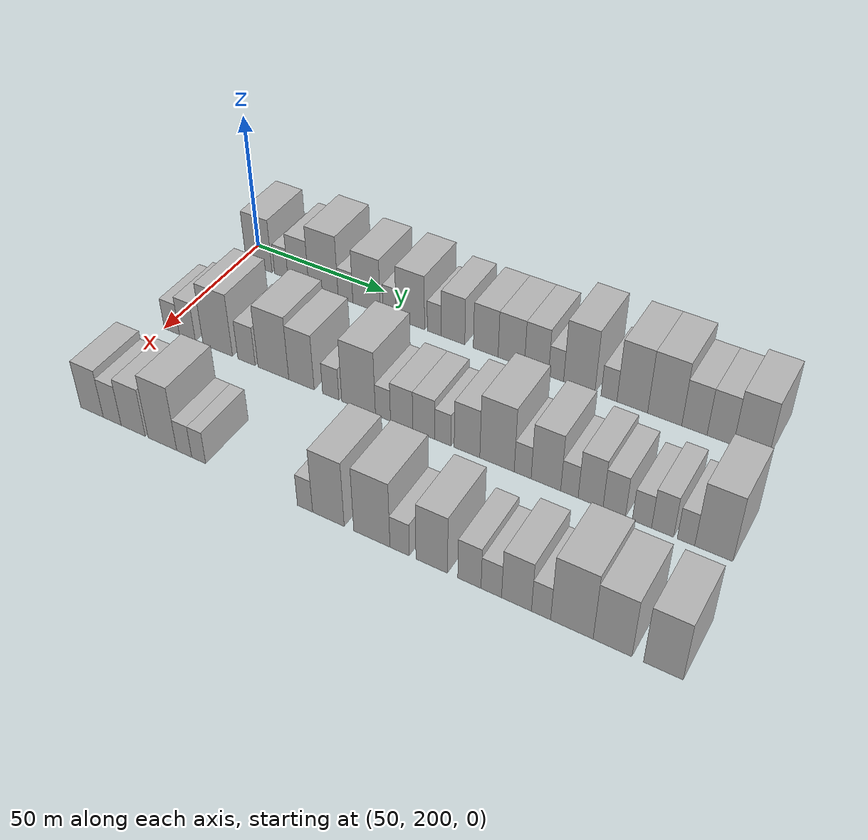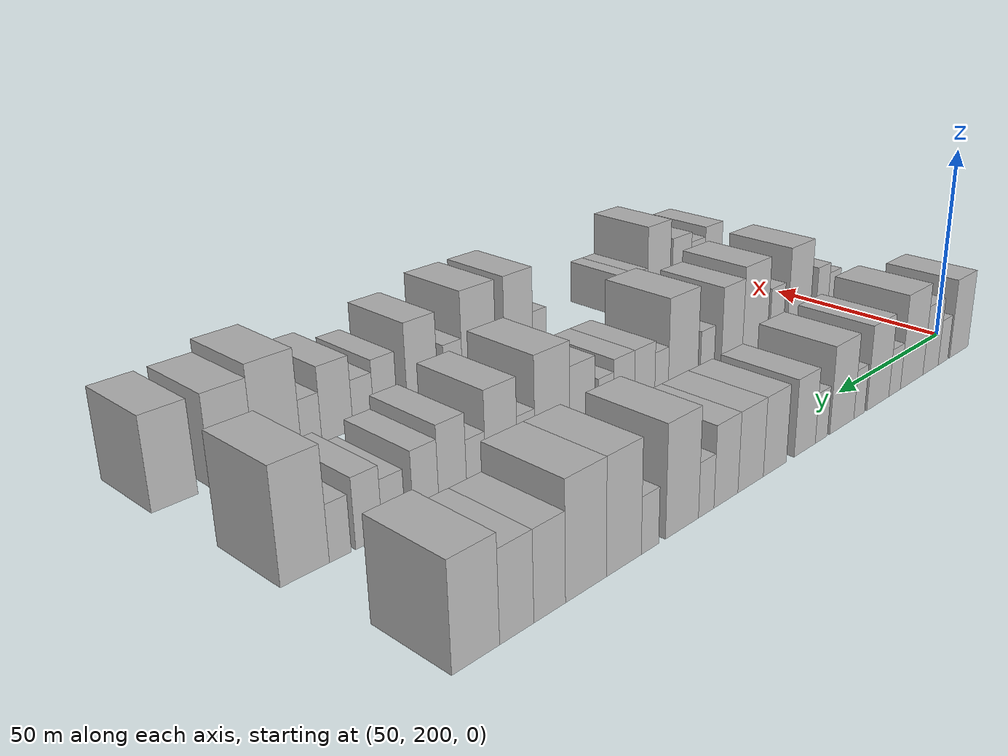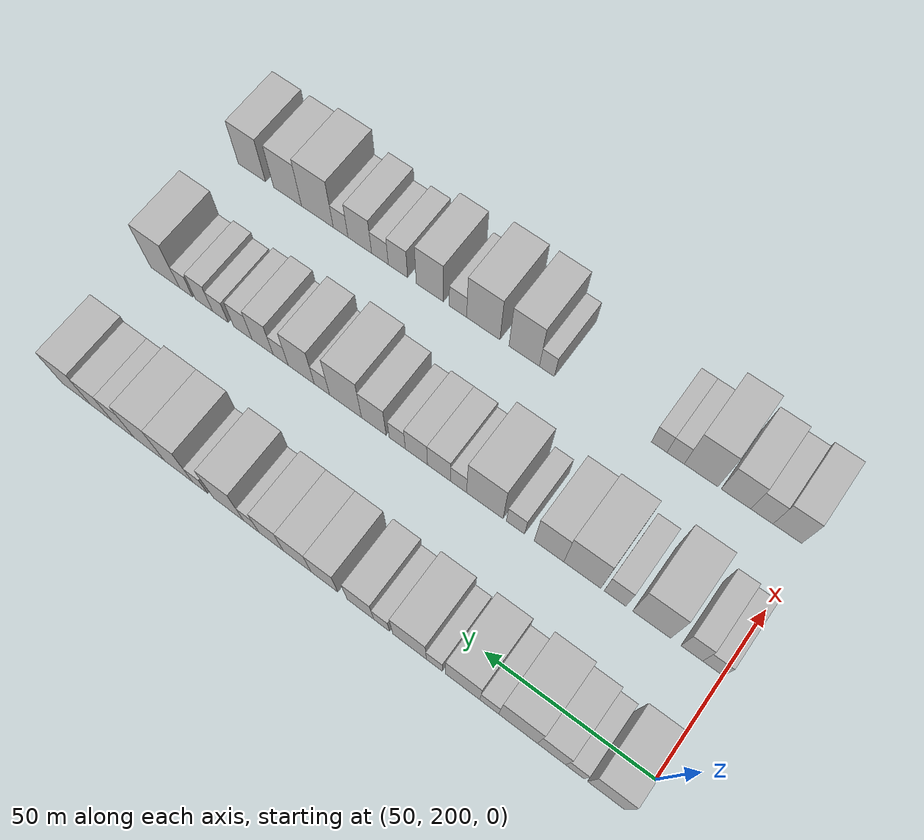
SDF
<sdf version="1.6">
 <world name="default">
  <model name="building_62">
   <static>1</static>
   <pose>50.0000 207.5864 0 0.000000 0.000000 0.000000</pose>
   <link name="link">
    <pose>0 0 10.50 0 0 0</pose>
    <collision name="collision"><geometry><box><size>20.0000 10.4510 21.0000</size></box></geometry></collision>
    <visual name="visual">
     <cast_shadows>0</cast_shadows>
     <geometry><box><size>20.0000 10.4510 21.0000</size></box></geometry>
     <material>
      <script>
       <uri>model://HANNAS_wall/materials/scripts</uri>
       <uri>model://HANNAS_wall/materials/textures</uri>
       <name>vrc/HANNAS_wall</name>
      </script>
     </material>
    </visual>
   </link>
  </model>
  <model name="building_63">
   <static>1</static>
   <pose>50.0000 216.4677 0 0.000000 0.000000 0.000000</pose>
   <link name="link">
    <pose>0 0 6.00 0 0 0</pose>
    <collision name="collision"><geometry><box><size>20.0000 5.3117 12.0000</size></box></geometry></collision>
    <visual name="visual">
     <cast_shadows>0</cast_shadows>
     <geometry><box><size>20.0000 5.3117 12.0000</size></box></geometry>
     <material>
      <script>
       <uri>model://HANNAS_wall/materials/scripts</uri>
       <uri>model://HANNAS_wall/materials/textures</uri>
       <name>vrc/HANNAS_wall</name>
      </script>
     </material>
    </visual>
   </link>
  </model>
  <model name="building_64">
   <static>1</static>
   <pose>50.0000 223.2005 0 0.000000 0.000000 0.000000</pose>
   <link name="link">
    <pose>0 0 9.00 0 0 0</pose>
    <collision name="collision"><geometry><box><size>20.0000 8.1540 18.0000</size></box></geometry></collision>
    <visual name="visual">
     <cast_shadows>0</cast_shadows>
     <geometry><box><size>20.0000 8.1540 18.0000</size></box></geometry>
     <material>
      <script>
       <uri>model://HANNAS_wall/materials/scripts</uri>
       <uri>model://HANNAS_wall/materials/textures</uri>
       <name>vrc/HANNAS_wall</name>
      </script>
     </material>
    </visual>
   </link>
  </model>
  <model name="building_65">
   <static>1</static>
   <pose>50.0000 232.9876 0 0.000000 0.000000 0.000000</pose>
   <link name="link">
    <pose>0 0 12.00 0 0 0</pose>
    <collision name="collision"><geometry><box><size>20.0000 11.4201 24.0000</size></box></geometry></collision>
    <visual name="visual">
     <cast_shadows>0</cast_shadows>
     <geometry><box><size>20.0000 11.4201 24.0000</size></box></geometry>
     <material>
      <script>
       <uri>model://HANNAS_wall/materials/scripts</uri>
       <uri>model://HANNAS_wall/materials/textures</uri>
       <name>vrc/HANNAS_wall</name>
      </script>
     </material>
    </visual>
   </link>
  </model>
  <model name="building_66">
   <static>1</static>
   <pose>50.0000 241.5061 0 0.000000 0.000000 0.000000</pose>
   <link name="link">
    <pose>0 0 6.00 0 0 0</pose>
    <collision name="collision"><geometry><box><size>20.0000 5.6169 12.0000</size></box></geometry></collision>
    <visual name="visual">
     <cast_shadows>0</cast_shadows>
     <geometry><box><size>20.0000 5.6169 12.0000</size></box></geometry>
     <material>
      <script>
       <uri>model://HANNAS_wall/materials/scripts</uri>
       <uri>model://HANNAS_wall/materials/textures</uri>
       <name>vrc/HANNAS_wall</name>
      </script>
     </material>
    </visual>
   </link>
  </model>
  <model name="building_67">
   <static>1</static>
   <pose>50.0000 249.4682 0 0.000000 0.000000 0.000000</pose>
   <link name="link">
    <pose>0 0 10.50 0 0 0</pose>
    <collision name="collision"><geometry><box><size>20.0000 10.3072 21.0000</size></box></geometry></collision>
    <visual name="visual">
     <cast_shadows>0</cast_shadows>
     <geometry><box><size>20.0000 10.3072 21.0000</size></box></geometry>
     <material>
      <script>
       <uri>model://HANNAS_wall/materials/scripts</uri>
       <uri>model://HANNAS_wall/materials/textures</uri>
       <name>vrc/HANNAS_wall</name>
      </script>
     </material>
    </visual>
   </link>
  </model>
  <model name="building_68">
   <static>1</static>
   <pose>50.0000 258.0373 0 0.000000 0.000000 0.000000</pose>
   <link name="link">
    <pose>0 0 6.00 0 0 0</pose>
    <collision name="collision"><geometry><box><size>20.0000 4.8310 12.0000</size></box></geometry></collision>
    <visual name="visual">
     <cast_shadows>0</cast_shadows>
     <geometry><box><size>20.0000 4.8310 12.0000</size></box></geometry>
     <material>
      <script>
       <uri>model://HANNAS_wall/materials/scripts</uri>
       <uri>model://HANNAS_wall/materials/textures</uri>
       <name>vrc/HANNAS_wall</name>
      </script>
     </material>
    </visual>
   </link>
  </model>
  <model name="building_69">
   <static>1</static>
   <pose>50.0000 265.6337 0 0.000000 0.000000 0.000000</pose>
   <link name="link">
    <pose>0 0 10.50 0 0 0</pose>
    <collision name="collision"><geometry><box><size>20.0000 10.3618 21.0000</size></box></geometry></collision>
    <visual name="visual">
     <cast_shadows>0</cast_shadows>
     <geometry><box><size>20.0000 10.3618 21.0000</size></box></geometry>
     <material>
      <script>
       <uri>model://HANNAS_wall/materials/scripts</uri>
       <uri>model://HANNAS_wall/materials/textures</uri>
       <name>vrc/HANNAS_wall</name>
      </script>
     </material>
    </visual>
   </link>
  </model>
  <model name="building_70">
   <static>1</static>
   <pose>50.0000 274.2960 0 0.000000 0.000000 0.000000</pose>
   <link name="link">
    <pose>0 0 6.00 0 0 0</pose>
    <collision name="collision"><geometry><box><size>20.0000 4.9629 12.0000</size></box></geometry></collision>
    <visual name="visual">
     <cast_shadows>0</cast_shadows>
     <geometry><box><size>20.0000 4.9629 12.0000</size></box></geometry>
     <material>
      <script>
       <uri>model://HANNAS_wall/materials/scripts</uri>
       <uri>model://HANNAS_wall/materials/textures</uri>
       <name>vrc/HANNAS_wall</name>
      </script>
     </material>
    </visual>
   </link>
  </model>
  <model name="building_71">
   <static>1</static>
   <pose>50.0000 280.9626 0 0.000000 0.000000 0.000000</pose>
   <link name="link">
    <pose>0 0 9.00 0 0 0</pose>
    <collision name="collision"><geometry><box><size>20.0000 8.3702 18.0000</size></box></geometry></collision>
    <visual name="visual">
     <cast_shadows>0</cast_shadows>
     <geometry><box><size>20.0000 8.3702 18.0000</size></box></geometry>
     <material>
      <script>
       <uri>model://HANNAS_wall/materials/scripts</uri>
       <uri>model://HANNAS_wall/materials/textures</uri>
       <name>vrc/HANNAS_wall</name>
      </script>
     </material>
    </visual>
   </link>
  </model>
  <model name="building_72">
   <static>1</static>
   <pose>50.0000 292.4372 0 0.000000 0.000000 0.000000</pose>
   <link name="link">
    <pose>0 0 9.00 0 0 0</pose>
    <collision name="collision"><geometry><box><size>20.0000 8.5790 18.0000</size></box></geometry></collision>
    <visual name="visual">
     <cast_shadows>0</cast_shadows>
     <geometry><box><size>20.0000 8.5790 18.0000</size></box></geometry>
     <material>
      <script>
       <uri>model://HANNAS_wall/materials/scripts</uri>
       <uri>model://HANNAS_wall/materials/textures</uri>
       <name>vrc/HANNAS_wall</name>
      </script>
     </material>
    </visual>
   </link>
  </model>
  <model name="building_73">
   <static>1</static>
   <pose>50.0000 301.2231 0 0.000000 0.000000 0.000000</pose>
   <link name="link">
    <pose>0 0 9.00 0 0 0</pose>
    <collision name="collision"><geometry><box><size>20.0000 8.9927 18.0000</size></box></geometry></collision>
    <visual name="visual">
     <cast_shadows>0</cast_shadows>
     <geometry><box><size>20.0000 8.9927 18.0000</size></box></geometry>
     <material>
      <script>
       <uri>model://HANNAS_wall/materials/scripts</uri>
       <uri>model://HANNAS_wall/materials/textures</uri>
       <name>vrc/HANNAS_wall</name>
      </script>
     </material>
    </visual>
   </link>
  </model>
  <model name="building_74">
   <static>1</static>
   <pose>50.0000 309.7520 0 0.000000 0.000000 0.000000</pose>
   <link name="link">
    <pose>0 0 9.00 0 0 0</pose>
    <collision name="collision"><geometry><box><size>20.0000 8.0651 18.0000</size></box></geometry></collision>
    <visual name="visual">
     <cast_shadows>0</cast_shadows>
     <geometry><box><size>20.0000 8.0651 18.0000</size></box></geometry>
     <material>
      <script>
       <uri>model://HANNAS_wall/materials/scripts</uri>
       <uri>model://HANNAS_wall/materials/textures</uri>
       <name>vrc/HANNAS_wall</name>
      </script>
     </material>
    </visual>
   </link>
  </model>
  <model name="building_75">
   <static>1</static>
   <pose>50.0000 316.2865 0 0.000000 0.000000 0.000000</pose>
   <link name="link">
    <pose>0 0 6.00 0 0 0</pose>
    <collision name="collision"><geometry><box><size>20.0000 5.0039 12.0000</size></box></geometry></collision>
    <visual name="visual">
     <cast_shadows>0</cast_shadows>
     <geometry><box><size>20.0000 5.0039 12.0000</size></box></geometry>
     <material>
      <script>
       <uri>model://HANNAS_wall/materials/scripts</uri>
       <uri>model://HANNAS_wall/materials/textures</uri>
       <name>vrc/HANNAS_wall</name>
      </script>
     </material>
    </visual>
   </link>
  </model>
  <model name="building_76">
   <static>1</static>
   <pose>50.0000 323.8845 0 0.000000 0.000000 0.000000</pose>
   <link name="link">
    <pose>0 0 12.00 0 0 0</pose>
    <collision name="collision"><geometry><box><size>20.0000 10.1921 24.0000</size></box></geometry></collision>
    <visual name="visual">
     <cast_shadows>0</cast_shadows>
     <geometry><box><size>20.0000 10.1921 24.0000</size></box></geometry>
     <material>
      <script>
       <uri>model://HANNAS_wall/materials/scripts</uri>
       <uri>model://HANNAS_wall/materials/textures</uri>
       <name>vrc/HANNAS_wall</name>
      </script>
     </material>
    </visual>
   </link>
  </model>
  <model name="building_77">
   <static>1</static>
   <pose>50.0000 333.5135 0 0.000000 0.000000 0.000000</pose>
   <link name="link">
    <pose>0 0 6.00 0 0 0</pose>
    <collision name="collision"><geometry><box><size>20.0000 5.0658 12.0000</size></box></geometry></collision>
    <visual name="visual">
     <cast_shadows>0</cast_shadows>
     <geometry><box><size>20.0000 5.0658 12.0000</size></box></geometry>
     <material>
      <script>
       <uri>model://HANNAS_wall/materials/scripts</uri>
       <uri>model://HANNAS_wall/materials/textures</uri>
       <name>vrc/HANNAS_wall</name>
      </script>
     </material>
    </visual>
   </link>
  </model>
  <model name="building_78">
   <static>1</static>
   <pose>50.0000 340.8929 0 0.000000 0.000000 0.000000</pose>
   <link name="link">
    <pose>0 0 12.00 0 0 0</pose>
    <collision name="collision"><geometry><box><size>20.0000 9.6931 24.0000</size></box></geometry></collision>
    <visual name="visual">
     <cast_shadows>0</cast_shadows>
     <geometry><box><size>20.0000 9.6931 24.0000</size></box></geometry>
     <material>
      <script>
       <uri>model://HANNAS_wall/materials/scripts</uri>
       <uri>model://HANNAS_wall/materials/textures</uri>
       <name>vrc/HANNAS_wall</name>
      </script>
     </material>
    </visual>
   </link>
  </model>
  <model name="building_79">
   <static>1</static>
   <pose>50.0000 351.0187 0 0.000000 0.000000 0.000000</pose>
   <link name="link">
    <pose>0 0 12.00 0 0 0</pose>
    <collision name="collision"><geometry><box><size>20.0000 10.5584 24.0000</size></box></geometry></collision>
    <visual name="visual">
     <cast_shadows>0</cast_shadows>
     <geometry><box><size>20.0000 10.5584 24.0000</size></box></geometry>
     <material>
      <script>
       <uri>model://HANNAS_wall/materials/scripts</uri>
       <uri>model://HANNAS_wall/materials/textures</uri>
       <name>vrc/HANNAS_wall</name>
      </script>
     </material>
    </visual>
   </link>
  </model>
  <model name="building_80">
   <static>1</static>
   <pose>50.0000 360.1405 0 0.000000 0.000000 0.000000</pose>
   <link name="link">
    <pose>0 0 9.00 0 0 0</pose>
    <collision name="collision"><geometry><box><size>20.0000 7.6852 18.0000</size></box></geometry></collision>
    <visual name="visual">
     <cast_shadows>0</cast_shadows>
     <geometry><box><size>20.0000 7.6852 18.0000</size></box></geometry>
     <material>
      <script>
       <uri>model://HANNAS_wall/materials/scripts</uri>
       <uri>model://HANNAS_wall/materials/textures</uri>
       <name>vrc/HANNAS_wall</name>
      </script>
     </material>
    </visual>
   </link>
  </model>
  <model name="building_81">
   <static>1</static>
   <pose>50.0000 367.9223 0 0.000000 0.000000 0.000000</pose>
   <link name="link">
    <pose>0 0 9.00 0 0 0</pose>
    <collision name="collision"><geometry><box><size>20.0000 7.8785 18.0000</size></box></geometry></collision>
    <visual name="visual">
     <cast_shadows>0</cast_shadows>
     <geometry><box><size>20.0000 7.8785 18.0000</size></box></geometry>
     <material>
      <script>
       <uri>model://HANNAS_wall/materials/scripts</uri>
       <uri>model://HANNAS_wall/materials/textures</uri>
       <name>vrc/HANNAS_wall</name>
      </script>
     </material>
    </visual>
   </link>
  </model>
  <model name="building_82">
   <static>1</static>
   <pose>50.0000 377.0366 0 0.000000 0.000000 0.000000</pose>
   <link name="link">
    <pose>0 0 10.50 0 0 0</pose>
    <collision name="collision"><geometry><box><size>20.0000 10.3501 21.0000</size></box></geometry></collision>
    <visual name="visual">
     <cast_shadows>0</cast_shadows>
     <geometry><box><size>20.0000 10.3501 21.0000</size></box></geometry>
     <material>
      <script>
       <uri>model://HANNAS_wall/materials/scripts</uri>
       <uri>model://HANNAS_wall/materials/textures</uri>
       <name>vrc/HANNAS_wall</name>
      </script>
     </material>
    </visual>
   </link>
  </model>
  <model name="building_144">
   <static>1</static>
   <pose>90.0000 202.9818 0 0.000000 0.000000 0.000000</pose>
   <link name="link">
    <pose>0 0 6.00 0 0 0</pose>
    <collision name="collision"><geometry><box><size>20.0000 5.9106 12.0000</size></box></geometry></collision>
    <visual name="visual">
     <cast_shadows>0</cast_shadows>
     <geometry><box><size>20.0000 5.9106 12.0000</size></box></geometry>
     <material>
      <script>
       <uri>model://HANNAS_wall/materials/scripts</uri>
       <uri>model://HANNAS_wall/materials/textures</uri>
       <name>vrc/HANNAS_wall</name>
      </script>
     </material>
    </visual>
   </link>
  </model>
  <model name="building_145">
   <static>1</static>
   <pose>90.0000 209.0664 0 0.000000 0.000000 0.000000</pose>
   <link name="link">
    <pose>0 0 7.50 0 0 0</pose>
    <collision name="collision"><geometry><box><size>20.0000 6.2588 15.0000</size></box></geometry></collision>
    <visual name="visual">
     <cast_shadows>0</cast_shadows>
     <geometry><box><size>20.0000 6.2588 15.0000</size></box></geometry>
     <material>
      <script>
       <uri>model://HANNAS_wall/materials/scripts</uri>
       <uri>model://HANNAS_wall/materials/textures</uri>
       <name>vrc/HANNAS_wall</name>
      </script>
     </material>
    </visual>
   </link>
  </model>
  <model name="building_146">
   <static>1</static>
   <pose>90.0000 220.8085 0 0.000000 0.000000 0.000000</pose>
   <link name="link">
    <pose>0 0 12.00 0 0 0</pose>
    <collision name="collision"><geometry><box><size>20.0000 11.2254 24.0000</size></box></geometry></collision>
    <visual name="visual">
     <cast_shadows>0</cast_shadows>
     <geometry><box><size>20.0000 11.2254 24.0000</size></box></geometry>
     <material>
      <script>
       <uri>model://HANNAS_wall/materials/scripts</uri>
       <uri>model://HANNAS_wall/materials/textures</uri>
       <name>vrc/HANNAS_wall</name>
      </script>
     </material>
    </visual>
   </link>
  </model>
  <model name="building_147">
   <static>1</static>
   <pose>90.0000 231.6739 0 0.000000 0.000000 0.000000</pose>
   <link name="link">
    <pose>0 0 7.50 0 0 0</pose>
    <collision name="collision"><geometry><box><size>20.0000 6.5054 15.0000</size></box></geometry></collision>
    <visual name="visual">
     <cast_shadows>0</cast_shadows>
     <geometry><box><size>20.0000 6.5054 15.0000</size></box></geometry>
     <material>
      <script>
       <uri>model://HANNAS_wall/materials/scripts</uri>
       <uri>model://HANNAS_wall/materials/textures</uri>
       <name>vrc/HANNAS_wall</name>
      </script>
     </material>
    </visual>
   </link>
  </model>
  <model name="building_148">
   <static>1</static>
   <pose>90.0000 241.5683 0 0.000000 0.000000 0.000000</pose>
   <link name="link">
    <pose>0 0 12.00 0 0 0</pose>
    <collision name="collision"><geometry><box><size>20.0000 11.2834 24.0000</size></box></geometry></collision>
    <visual name="visual">
     <cast_shadows>0</cast_shadows>
     <geometry><box><size>20.0000 11.2834 24.0000</size></box></geometry>
     <material>
      <script>
       <uri>model://HANNAS_wall/materials/scripts</uri>
       <uri>model://HANNAS_wall/materials/textures</uri>
       <name>vrc/HANNAS_wall</name>
      </script>
     </material>
    </visual>
   </link>
  </model>
  <model name="building_149">
   <static>1</static>
   <pose>90.0000 251.7614 0 0.000000 0.000000 0.000000</pose>
   <link name="link">
    <pose>0 0 10.50 0 0 0</pose>
    <collision name="collision"><geometry><box><size>20.0000 9.1027 21.0000</size></box></geometry></collision>
    <visual name="visual">
     <cast_shadows>0</cast_shadows>
     <geometry><box><size>20.0000 9.1027 21.0000</size></box></geometry>
     <material>
      <script>
       <uri>model://HANNAS_wall/materials/scripts</uri>
       <uri>model://HANNAS_wall/materials/textures</uri>
       <name>vrc/HANNAS_wall</name>
      </script>
     </material>
    </visual>
   </link>
  </model>
  <model name="building_150">
   <static>1</static>
   <pose>90.0000 262.1742 0 0.000000 0.000000 0.000000</pose>
   <link name="link">
    <pose>0 0 6.00 0 0 0</pose>
    <collision name="collision"><geometry><box><size>20.0000 5.7229 12.0000</size></box></geometry></collision>
    <visual name="visual">
     <cast_shadows>0</cast_shadows>
     <geometry><box><size>20.0000 5.7229 12.0000</size></box></geometry>
     <material>
      <script>
       <uri>model://HANNAS_wall/materials/scripts</uri>
       <uri>model://HANNAS_wall/materials/textures</uri>
       <name>vrc/HANNAS_wall</name>
      </script>
     </material>
    </visual>
   </link>
  </model>
  <model name="building_151">
   <static>1</static>
   <pose>90.0000 271.8398 0 0.000000 0.000000 0.000000</pose>
   <link name="link">
    <pose>0 0 12.00 0 0 0</pose>
    <collision name="collision"><geometry><box><size>20.0000 11.6083 24.0000</size></box></geometry></collision>
    <visual name="visual">
     <cast_shadows>0</cast_shadows>
     <geometry><box><size>20.0000 11.6083 24.0000</size></box></geometry>
     <material>
      <script>
       <uri>model://HANNAS_wall/materials/scripts</uri>
       <uri>model://HANNAS_wall/materials/textures</uri>
       <name>vrc/HANNAS_wall</name>
      </script>
     </material>
    </visual>
   </link>
  </model>
  <model name="building_152">
   <static>1</static>
   <pose>90.0000 280.1992 0 0.000000 0.000000 0.000000</pose>
   <link name="link">
    <pose>0 0 6.00 0 0 0</pose>
    <collision name="collision"><geometry><box><size>20.0000 5.1104 12.0000</size></box></geometry></collision>
    <visual name="visual">
     <cast_shadows>0</cast_shadows>
     <geometry><box><size>20.0000 5.1104 12.0000</size></box></geometry>
     <material>
      <script>
       <uri>model://HANNAS_wall/materials/scripts</uri>
       <uri>model://HANNAS_wall/materials/textures</uri>
       <name>vrc/HANNAS_wall</name>
      </script>
     </material>
    </visual>
   </link>
  </model>
  <model name="building_153">
   <static>1</static>
   <pose>90.0000 286.4863 0 0.000000 0.000000 0.000000</pose>
   <link name="link">
    <pose>0 0 7.50 0 0 0</pose>
    <collision name="collision"><geometry><box><size>20.0000 7.4639 15.0000</size></box></geometry></collision>
    <visual name="visual">
     <cast_shadows>0</cast_shadows>
     <geometry><box><size>20.0000 7.4639 15.0000</size></box></geometry>
     <material>
      <script>
       <uri>model://HANNAS_wall/materials/scripts</uri>
       <uri>model://HANNAS_wall/materials/textures</uri>
       <name>vrc/HANNAS_wall</name>
      </script>
     </material>
    </visual>
   </link>
  </model>
  <model name="building_154">
   <static>1</static>
   <pose>90.0000 293.8385 0 0.000000 0.000000 0.000000</pose>
   <link name="link">
    <pose>0 0 7.50 0 0 0</pose>
    <collision name="collision"><geometry><box><size>20.0000 7.2404 15.0000</size></box></geometry></collision>
    <visual name="visual">
     <cast_shadows>0</cast_shadows>
     <geometry><box><size>20.0000 7.2404 15.0000</size></box></geometry>
     <material>
      <script>
       <uri>model://HANNAS_wall/materials/scripts</uri>
       <uri>model://HANNAS_wall/materials/textures</uri>
       <name>vrc/HANNAS_wall</name>
      </script>
     </material>
    </visual>
   </link>
  </model>
  <model name="building_155">
   <static>1</static>
   <pose>90.0000 300.1157 0 0.000000 0.000000 0.000000</pose>
   <link name="link">
    <pose>0 0 6.00 0 0 0</pose>
    <collision name="collision"><geometry><box><size>20.0000 5.3140 12.0000</size></box></geometry></collision>
    <visual name="visual">
     <cast_shadows>0</cast_shadows>
     <geometry><box><size>20.0000 5.3140 12.0000</size></box></geometry>
     <material>
      <script>
       <uri>model://HANNAS_wall/materials/scripts</uri>
       <uri>model://HANNAS_wall/materials/textures</uri>
       <name>vrc/HANNAS_wall</name>
      </script>
     </material>
    </visual>
   </link>
  </model>
  <model name="building_156">
   <static>1</static>
   <pose>90.0000 307.8784 0 0.000000 0.000000 0.000000</pose>
   <link name="link">
    <pose>0 0 9.00 0 0 0</pose>
    <collision name="collision"><geometry><box><size>20.0000 8.2113 18.0000</size></box></geometry></collision>
    <visual name="visual">
     <cast_shadows>0</cast_shadows>
     <geometry><box><size>20.0000 8.2113 18.0000</size></box></geometry>
     <material>
      <script>
       <uri>model://HANNAS_wall/materials/scripts</uri>
       <uri>model://HANNAS_wall/materials/textures</uri>
       <name>vrc/HANNAS_wall</name>
      </script>
     </material>
    </visual>
   </link>
  </model>
  <model name="building_157">
   <static>1</static>
   <pose>90.0000 317.3934 0 0.000000 0.000000 0.000000</pose>
   <link name="link">
    <pose>0 0 12.00 0 0 0</pose>
    <collision name="collision"><geometry><box><size>20.0000 10.8187 24.0000</size></box></geometry></collision>
    <visual name="visual">
     <cast_shadows>0</cast_shadows>
     <geometry><box><size>20.0000 10.8187 24.0000</size></box></geometry>
     <material>
      <script>
       <uri>model://HANNAS_wall/materials/scripts</uri>
       <uri>model://HANNAS_wall/materials/textures</uri>
       <name>vrc/HANNAS_wall</name>
      </script>
     </material>
    </visual>
   </link>
  </model>
  <model name="building_158">
   <static>1</static>
   <pose>90.0000 325.4134 0 0.000000 0.000000 0.000000</pose>
   <link name="link">
    <pose>0 0 6.00 0 0 0</pose>
    <collision name="collision"><geometry><box><size>20.0000 5.2213 12.0000</size></box></geometry></collision>
    <visual name="visual">
     <cast_shadows>0</cast_shadows>
     <geometry><box><size>20.0000 5.2213 12.0000</size></box></geometry>
     <material>
      <script>
       <uri>model://HANNAS_wall/materials/scripts</uri>
       <uri>model://HANNAS_wall/materials/textures</uri>
       <name>vrc/HANNAS_wall</name>
      </script>
     </material>
    </visual>
   </link>
  </model>
  <model name="building_159">
   <static>1</static>
   <pose>90.0000 332.5241 0 0.000000 0.000000 0.000000</pose>
   <link name="link">
    <pose>0 0 10.50 0 0 0</pose>
    <collision name="collision"><geometry><box><size>20.0000 9.0000 21.0000</size></box></geometry></collision>
    <visual name="visual">
     <cast_shadows>0</cast_shadows>
     <geometry><box><size>20.0000 9.0000 21.0000</size></box></geometry>
     <material>
      <script>
       <uri>model://HANNAS_wall/materials/scripts</uri>
       <uri>model://HANNAS_wall/materials/textures</uri>
       <name>vrc/HANNAS_wall</name>
      </script>
     </material>
    </visual>
   </link>
  </model>
  <model name="building_160">
   <static>1</static>
   <pose>90.0000 339.6397 0 0.000000 0.000000 0.000000</pose>
   <link name="link">
    <pose>0 0 6.00 0 0 0</pose>
    <collision name="collision"><geometry><box><size>20.0000 5.2312 12.0000</size></box></geometry></collision>
    <visual name="visual">
     <cast_shadows>0</cast_shadows>
     <geometry><box><size>20.0000 5.2312 12.0000</size></box></geometry>
     <material>
      <script>
       <uri>model://HANNAS_wall/materials/scripts</uri>
       <uri>model://HANNAS_wall/materials/textures</uri>
       <name>vrc/HANNAS_wall</name>
      </script>
     </material>
    </visual>
   </link>
  </model>
  <model name="building_161">
   <static>1</static>
   <pose>90.0000 345.9311 0 0.000000 0.000000 0.000000</pose>
   <link name="link">
    <pose>0 0 9.00 0 0 0</pose>
    <collision name="collision"><geometry><box><size>20.0000 7.3518 18.0000</size></box></geometry></collision>
    <visual name="visual">
     <cast_shadows>0</cast_shadows>
     <geometry><box><size>20.0000 7.3518 18.0000</size></box></geometry>
     <material>
      <script>
       <uri>model://HANNAS_wall/materials/scripts</uri>
       <uri>model://HANNAS_wall/materials/textures</uri>
       <name>vrc/HANNAS_wall</name>
      </script>
     </material>
    </visual>
   </link>
  </model>
  <model name="building_162">
   <static>1</static>
   <pose>90.0000 352.8649 0 0.000000 0.000000 0.000000</pose>
   <link name="link">
    <pose>0 0 7.50 0 0 0</pose>
    <collision name="collision"><geometry><box><size>20.0000 6.5157 15.0000</size></box></geometry></collision>
    <visual name="visual">
     <cast_shadows>0</cast_shadows>
     <geometry><box><size>20.0000 6.5157 15.0000</size></box></geometry>
     <material>
      <script>
       <uri>model://HANNAS_wall/materials/scripts</uri>
       <uri>model://HANNAS_wall/materials/textures</uri>
       <name>vrc/HANNAS_wall</name>
      </script>
     </material>
    </visual>
   </link>
  </model>
  <model name="building_163">
   <static>1</static>
   <pose>90.0000 360.8877 0 0.000000 0.000000 0.000000</pose>
   <link name="link">
    <pose>0 0 6.00 0 0 0</pose>
    <collision name="collision"><geometry><box><size>20.0000 5.5297 12.0000</size></box></geometry></collision>
    <visual name="visual">
     <cast_shadows>0</cast_shadows>
     <geometry><box><size>20.0000 5.5297 12.0000</size></box></geometry>
     <material>
      <script>
       <uri>model://HANNAS_wall/materials/scripts</uri>
       <uri>model://HANNAS_wall/materials/textures</uri>
       <name>vrc/HANNAS_wall</name>
      </script>
     </material>
    </visual>
   </link>
  </model>
  <model name="building_164">
   <static>1</static>
   <pose>90.0000 366.7711 0 0.000000 0.000000 0.000000</pose>
   <link name="link">
    <pose>0 0 7.50 0 0 0</pose>
    <collision name="collision"><geometry><box><size>20.0000 6.2372 15.0000</size></box></geometry></collision>
    <visual name="visual">
     <cast_shadows>0</cast_shadows>
     <geometry><box><size>20.0000 6.2372 15.0000</size></box></geometry>
     <material>
      <script>
       <uri>model://HANNAS_wall/materials/scripts</uri>
       <uri>model://HANNAS_wall/materials/textures</uri>
       <name>vrc/HANNAS_wall</name>
      </script>
     </material>
    </visual>
   </link>
  </model>
  <model name="building_165">
   <static>1</static>
   <pose>90.0000 373.3327 0 0.000000 0.000000 0.000000</pose>
   <link name="link">
    <pose>0 0 6.00 0 0 0</pose>
    <collision name="collision"><geometry><box><size>20.0000 4.8859 12.0000</size></box></geometry></collision>
    <visual name="visual">
     <cast_shadows>0</cast_shadows>
     <geometry><box><size>20.0000 4.8859 12.0000</size></box></geometry>
     <material>
      <script>
       <uri>model://HANNAS_wall/materials/scripts</uri>
       <uri>model://HANNAS_wall/materials/textures</uri>
       <name>vrc/HANNAS_wall</name>
      </script>
     </material>
    </visual>
   </link>
  </model>
  <model name="building_166">
   <static>1</static>
   <pose>90.0000 381.0127 0 0.000000 0.000000 0.000000</pose>
   <link name="link">
    <pose>0 0 12.00 0 0 0</pose>
    <collision name="collision"><geometry><box><size>20.0000 10.4741 24.0000</size></box></geometry></collision>
    <visual name="visual">
     <cast_shadows>0</cast_shadows>
     <geometry><box><size>20.0000 10.4741 24.0000</size></box></geometry>
     <material>
      <script>
       <uri>model://HANNAS_wall/materials/scripts</uri>
       <uri>model://HANNAS_wall/materials/textures</uri>
       <name>vrc/HANNAS_wall</name>
      </script>
     </material>
    </visual>
   </link>
  </model>
  <model name="building_231">
   <static>1</static>
   <pose>130.0000 205.6348 0 0.000000 0.000000 0.000000</pose>
   <link name="link">
    <pose>0 0 9.00 0 0 0</pose>
    <collision name="collision"><geometry><box><size>20.0000 8.4606 18.0000</size></box></geometry></collision>
    <visual name="visual">
     <cast_shadows>0</cast_shadows>
     <geometry><box><size>20.0000 8.4606 18.0000</size></box></geometry>
     <material>
      <script>
       <uri>model://HANNAS_wall/materials/scripts</uri>
       <uri>model://HANNAS_wall/materials/textures</uri>
       <name>vrc/HANNAS_wall</name>
      </script>
     </material>
    </visual>
   </link>
  </model>
  <model name="building_232">
   <static>1</static>
   <pose>130.0000 213.2158 0 0.000000 0.000000 0.000000</pose>
   <link name="link">
    <pose>0 0 7.50 0 0 0</pose>
    <collision name="collision"><geometry><box><size>20.0000 6.7013 15.0000</size></box></geometry></collision>
    <visual name="visual">
     <cast_shadows>0</cast_shadows>
     <geometry><box><size>20.0000 6.7013 15.0000</size></box></geometry>
     <material>
      <script>
       <uri>model://HANNAS_wall/materials/scripts</uri>
       <uri>model://HANNAS_wall/materials/textures</uri>
       <name>vrc/HANNAS_wall</name>
      </script>
     </material>
    </visual>
   </link>
  </model>
  <model name="building_233">
   <static>1</static>
   <pose>130.0000 220.9841 0 0.000000 0.000000 0.000000</pose>
   <link name="link">
    <pose>0 0 9.00 0 0 0</pose>
    <collision name="collision"><geometry><box><size>20.0000 8.8354 18.0000</size></box></geometry></collision>
    <visual name="visual">
     <cast_shadows>0</cast_shadows>
     <geometry><box><size>20.0000 8.8354 18.0000</size></box></geometry>
     <material>
      <script>
       <uri>model://HANNAS_wall/materials/scripts</uri>
       <uri>model://HANNAS_wall/materials/textures</uri>
       <name>vrc/HANNAS_wall</name>
      </script>
     </material>
    </visual>
   </link>
  </model>
  <model name="building_234">
   <static>1</static>
   <pose>130.0000 231.5564 0 0.000000 0.000000 0.000000</pose>
   <link name="link">
    <pose>0 0 12.00 0 0 0</pose>
    <collision name="collision"><geometry><box><size>20.0000 10.3092 24.0000</size></box></geometry></collision>
    <visual name="visual">
     <cast_shadows>0</cast_shadows>
     <geometry><box><size>20.0000 10.3092 24.0000</size></box></geometry>
     <material>
      <script>
       <uri>model://HANNAS_wall/materials/scripts</uri>
       <uri>model://HANNAS_wall/materials/textures</uri>
       <name>vrc/HANNAS_wall</name>
      </script>
     </material>
    </visual>
   </link>
  </model>
  <model name="building_235">
   <static>1</static>
   <pose>130.0000 239.3586 0 0.000000 0.000000 0.000000</pose>
   <link name="link">
    <pose>0 0 6.00 0 0 0</pose>
    <collision name="collision"><geometry><box><size>20.0000 5.2953 12.0000</size></box></geometry></collision>
    <visual name="visual">
     <cast_shadows>0</cast_shadows>
     <geometry><box><size>20.0000 5.2953 12.0000</size></box></geometry>
     <material>
      <script>
       <uri>model://HANNAS_wall/materials/scripts</uri>
       <uri>model://HANNAS_wall/materials/textures</uri>
       <name>vrc/HANNAS_wall</name>
      </script>
     </material>
    </visual>
   </link>
  </model>
  <model name="building_236">
   <static>1</static>
   <pose>130.0000 244.4445 0 0.000000 0.000000 0.000000</pose>
   <link name="link">
    <pose>0 0 6.00 0 0 0</pose>
    <collision name="collision"><geometry><box><size>20.0000 4.8765 12.0000</size></box></geometry></collision>
    <visual name="visual">
     <cast_shadows>0</cast_shadows>
     <geometry><box><size>20.0000 4.8765 12.0000</size></box></geometry>
     <material>
      <script>
       <uri>model://HANNAS_wall/materials/scripts</uri>
       <uri>model://HANNAS_wall/materials/textures</uri>
       <name>vrc/HANNAS_wall</name>
      </script>
     </material>
    </visual>
   </link>
  </model>
  <model name="building_237">
   <static>1</static>
   <pose>130.0000 280.2442 0 0.000000 0.000000 0.000000</pose>
   <link name="link">
    <pose>0 0 6.00 0 0 0</pose>
    <collision name="collision"><geometry><box><size>20.0000 4.9077 12.0000</size></box></geometry></collision>
    <visual name="visual">
     <cast_shadows>0</cast_shadows>
     <geometry><box><size>20.0000 4.9077 12.0000</size></box></geometry>
     <material>
      <script>
       <uri>model://HANNAS_wall/materials/scripts</uri>
       <uri>model://HANNAS_wall/materials/textures</uri>
       <name>vrc/HANNAS_wall</name>
      </script>
     </material>
    </visual>
   </link>
  </model>
  <model name="building_238">
   <static>1</static>
   <pose>130.0000 287.7267 0 0.000000 0.000000 0.000000</pose>
   <link name="link">
    <pose>0 0 12.00 0 0 0</pose>
    <collision name="collision"><geometry><box><size>20.0000 10.0572 24.0000</size></box></geometry></collision>
    <visual name="visual">
     <cast_shadows>0</cast_shadows>
     <geometry><box><size>20.0000 10.0572 24.0000</size></box></geometry>
     <material>
      <script>
       <uri>model://HANNAS_wall/materials/scripts</uri>
       <uri>model://HANNAS_wall/materials/textures</uri>
       <name>vrc/HANNAS_wall</name>
      </script>
     </material>
    </visual>
   </link>
  </model>
  <model name="building_239">
   <static>1</static>
   <pose>130.0000 301.3521 0 0.000000 0.000000 0.000000</pose>
   <link name="link">
    <pose>0 0 12.00 0 0 0</pose>
    <collision name="collision"><geometry><box><size>20.0000 11.1936 24.0000</size></box></geometry></collision>
    <visual name="visual">
     <cast_shadows>0</cast_shadows>
     <geometry><box><size>20.0000 11.1936 24.0000</size></box></geometry>
     <material>
      <script>
       <uri>model://HANNAS_wall/materials/scripts</uri>
       <uri>model://HANNAS_wall/materials/textures</uri>
       <name>vrc/HANNAS_wall</name>
      </script>
     </material>
    </visual>
   </link>
  </model>
  <model name="building_240">
   <static>1</static>
   <pose>130.0000 309.8819 0 0.000000 0.000000 0.000000</pose>
   <link name="link">
    <pose>0 0 6.00 0 0 0</pose>
    <collision name="collision"><geometry><box><size>20.0000 5.8661 12.0000</size></box></geometry></collision>
    <visual name="visual">
     <cast_shadows>0</cast_shadows>
     <geometry><box><size>20.0000 5.8661 12.0000</size></box></geometry>
     <material>
      <script>
       <uri>model://HANNAS_wall/materials/scripts</uri>
       <uri>model://HANNAS_wall/materials/textures</uri>
       <name>vrc/HANNAS_wall</name>
      </script>
     </material>
    </visual>
   </link>
  </model>
  <model name="building_241">
   <static>1</static>
   <pose>130.0000 319.5035 0 0.000000 0.000000 0.000000</pose>
   <link name="link">
    <pose>0 0 10.50 0 0 0</pose>
    <collision name="collision"><geometry><box><size>20.0000 9.3770 21.0000</size></box></geometry></collision>
    <visual name="visual">
     <cast_shadows>0</cast_shadows>
     <geometry><box><size>20.0000 9.3770 21.0000</size></box></geometry>
     <material>
      <script>
       <uri>model://HANNAS_wall/materials/scripts</uri>
       <uri>model://HANNAS_wall/materials/textures</uri>
       <name>vrc/HANNAS_wall</name>
      </script>
     </material>
    </visual>
   </link>
  </model>
  <model name="building_242">
   <static>1</static>
   <pose>130.0000 330.5554 0 0.000000 0.000000 0.000000</pose>
   <link name="link">
    <pose>0 0 7.50 0 0 0</pose>
    <collision name="collision"><geometry><box><size>20.0000 6.7268 15.0000</size></box></geometry></collision>
    <visual name="visual">
     <cast_shadows>0</cast_shadows>
     <geometry><box><size>20.0000 6.7268 15.0000</size></box></geometry>
     <material>
      <script>
       <uri>model://HANNAS_wall/materials/scripts</uri>
       <uri>model://HANNAS_wall/materials/textures</uri>
       <name>vrc/HANNAS_wall</name>
      </script>
     </material>
    </visual>
   </link>
  </model>
  <model name="building_243">
   <static>1</static>
   <pose>130.0000 336.8509 0 0.000000 0.000000 0.000000</pose>
   <link name="link">
    <pose>0 0 6.00 0 0 0</pose>
    <collision name="collision"><geometry><box><size>20.0000 5.8641 12.0000</size></box></geometry></collision>
    <visual name="visual">
     <cast_shadows>0</cast_shadows>
     <geometry><box><size>20.0000 5.8641 12.0000</size></box></geometry>
     <material>
      <script>
       <uri>model://HANNAS_wall/materials/scripts</uri>
       <uri>model://HANNAS_wall/materials/textures</uri>
       <name>vrc/HANNAS_wall</name>
      </script>
     </material>
    </visual>
   </link>
  </model>
  <model name="building_244">
   <static>1</static>
   <pose>130.0000 343.9808 0 0.000000 0.000000 0.000000</pose>
   <link name="link">
    <pose>0 0 9.00 0 0 0</pose>
    <collision name="collision"><geometry><box><size>20.0000 8.3957 18.0000</size></box></geometry></collision>
    <visual name="visual">
     <cast_shadows>0</cast_shadows>
     <geometry><box><size>20.0000 8.3957 18.0000</size></box></geometry>
     <material>
      <script>
       <uri>model://HANNAS_wall/materials/scripts</uri>
       <uri>model://HANNAS_wall/materials/textures</uri>
       <name>vrc/HANNAS_wall</name>
      </script>
     </material>
    </visual>
   </link>
  </model>
  <model name="building_245">
   <static>1</static>
   <pose>130.0000 350.8219 0 0.000000 0.000000 0.000000</pose>
   <link name="link">
    <pose>0 0 6.00 0 0 0</pose>
    <collision name="collision"><geometry><box><size>20.0000 5.2866 12.0000</size></box></geometry></collision>
    <visual name="visual">
     <cast_shadows>0</cast_shadows>
     <geometry><box><size>20.0000 5.2866 12.0000</size></box></geometry>
     <material>
      <script>
       <uri>model://HANNAS_wall/materials/scripts</uri>
       <uri>model://HANNAS_wall/materials/textures</uri>
       <name>vrc/HANNAS_wall</name>
      </script>
     </material>
    </visual>
   </link>
  </model>
  <model name="building_246">
   <static>1</static>
   <pose>130.0000 359.2235 0 0.000000 0.000000 0.000000</pose>
   <link name="link">
    <pose>0 0 12.00 0 0 0</pose>
    <collision name="collision"><geometry><box><size>20.0000 11.5166 24.0000</size></box></geometry></collision>
    <visual name="visual">
     <cast_shadows>0</cast_shadows>
     <geometry><box><size>20.0000 11.5166 24.0000</size></box></geometry>
     <material>
      <script>
       <uri>model://HANNAS_wall/materials/scripts</uri>
       <uri>model://HANNAS_wall/materials/textures</uri>
       <name>vrc/HANNAS_wall</name>
      </script>
     </material>
    </visual>
   </link>
  </model>
  <model name="building_247">
   <static>1</static>
   <pose>130.0000 370.1145 0 0.000000 0.000000 0.000000</pose>
   <link name="link">
    <pose>0 0 10.50 0 0 0</pose>
    <collision name="collision"><geometry><box><size>20.0000 10.2653 21.0000</size></box></geometry></collision>
    <visual name="visual">
     <cast_shadows>0</cast_shadows>
     <geometry><box><size>20.0000 10.2653 21.0000</size></box></geometry>
     <material>
      <script>
       <uri>model://HANNAS_wall/materials/scripts</uri>
       <uri>model://HANNAS_wall/materials/textures</uri>
       <name>vrc/HANNAS_wall</name>
      </script>
     </material>
    </visual>
   </link>
  </model>
  <model name="building_248">
   <static>1</static>
   <pose>130.0000 383.3187 0 0.000000 0.000000 0.000000</pose>
   <link name="link">
    <pose>0 0 10.50 0 0 0</pose>
    <collision name="collision"><geometry><box><size>20.0000 10.1429 21.0000</size></box></geometry></collision>
    <visual name="visual">
     <cast_shadows>0</cast_shadows>
     <geometry><box><size>20.0000 10.1429 21.0000</size></box></geometry>
     <material>
      <script>
       <uri>model://HANNAS_wall/materials/scripts</uri>
       <uri>model://HANNAS_wall/materials/textures</uri>
       <name>vrc/HANNAS_wall</name>
      </script>
     </material>
    </visual>
   </link>
  </model>
 </world>
</sdf>
